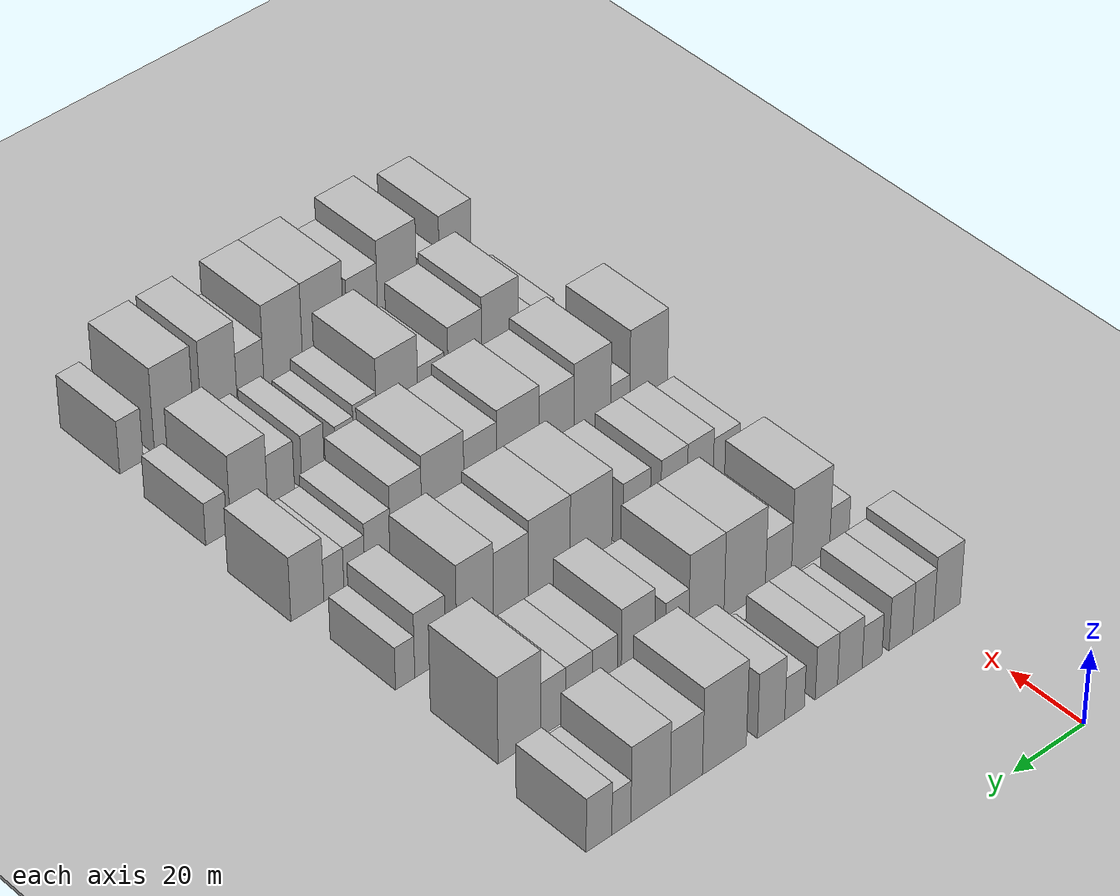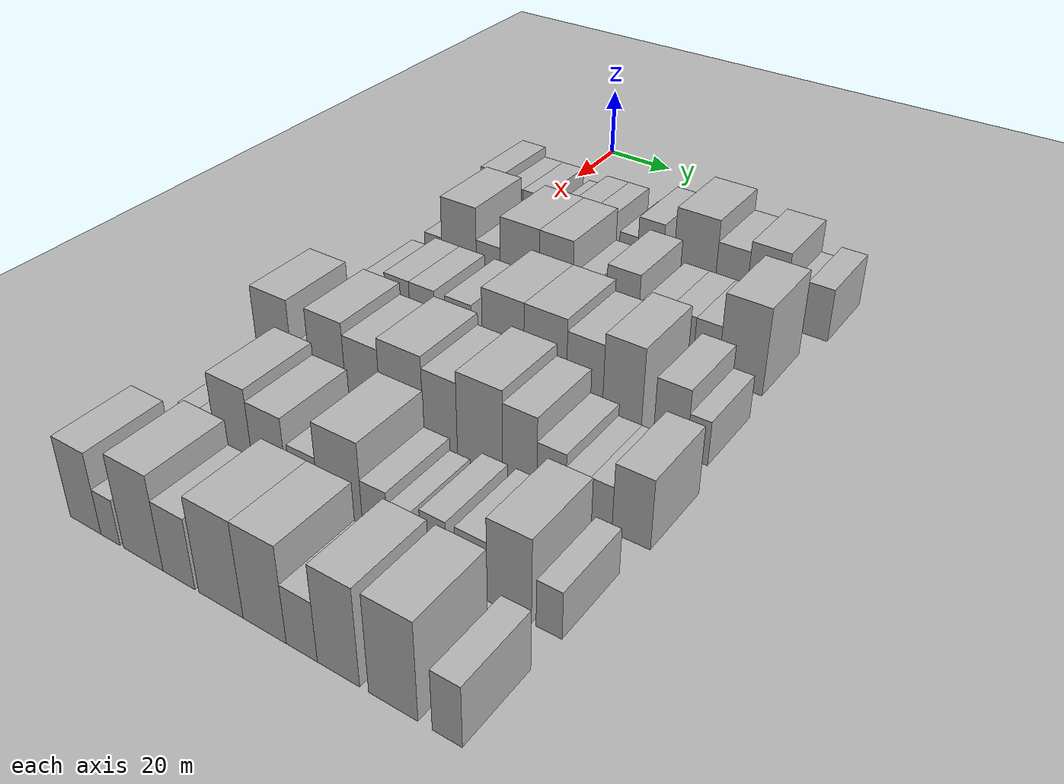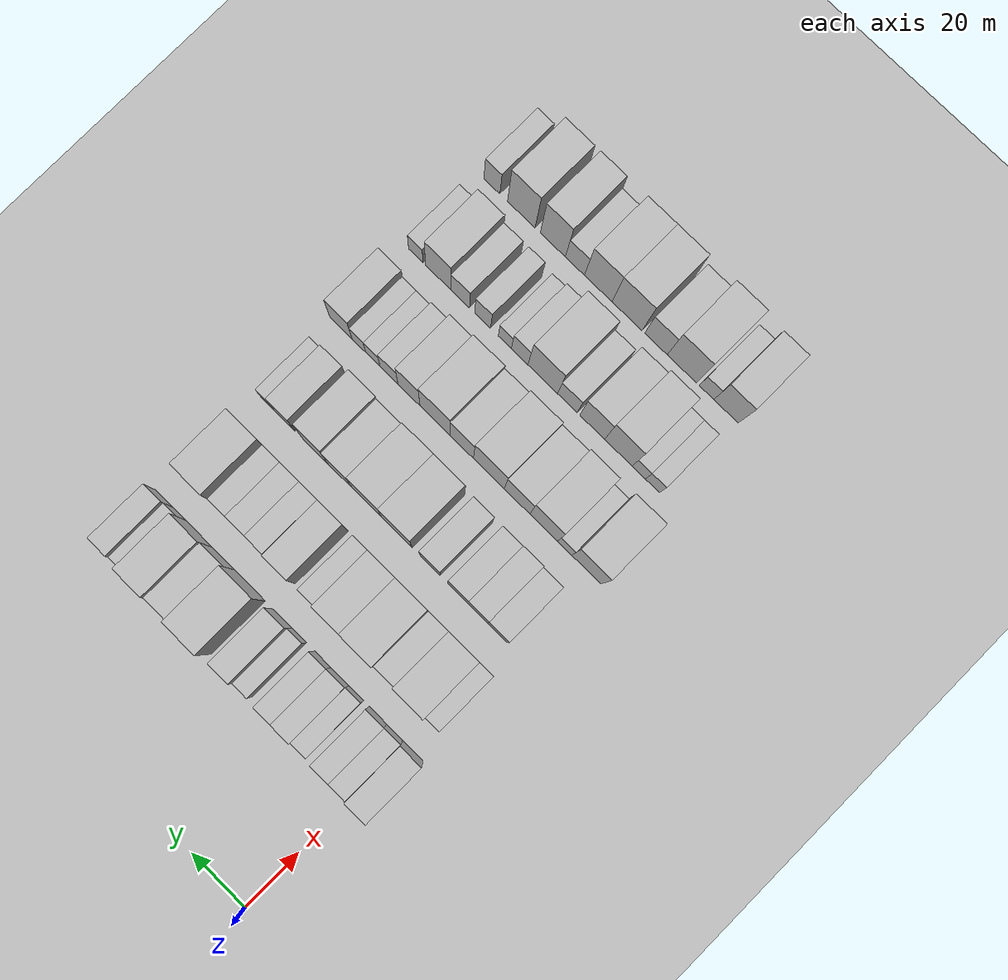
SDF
<sdf version="1.6">
 <world name="default">
  <include><name>ground_plane_1</name><uri>model://HANNAS_ground_plane</uri></include>
  <include>
   <name>ground_plane_2</name>
   <uri>model://HANNAS_ground_plane</uri>
   <pose>100 0 0  0 0 0</pose>
  </include>
  <model name="building_58">
   <static>1</static>
   <pose>50.0000 -2.4534 0 0.000000 0.000000 0.000000</pose>
   <link name="link">
    <pose>0 0 9.00 0 0 0</pose>
    <collision name="collision"><geometry><box><size>20.0000 7.6511 18.0000</size></box></geometry></collision>
    <visual name="visual">
     <cast_shadows>0</cast_shadows>
     <geometry><box><size>20.0000 7.6511 18.0000</size></box></geometry>
     <material>
      <script>
       <uri>model://HANNAS_wall/materials/scripts</uri>
       <uri>model://HANNAS_wall/materials/textures</uri>
       <name>vrc/HANNAS_wall</name>
      </script>
     </material>
    </visual>
   </link>
  </model>
  <model name="building_59">
   <static>1</static>
   <pose>50.0000 4.3896 0 0.000000 0.000000 0.000000</pose>
   <link name="link">
    <pose>0 0 7.50 0 0 0</pose>
    <collision name="collision"><geometry><box><size>20.0000 6.0348 15.0000</size></box></geometry></collision>
    <visual name="visual">
     <cast_shadows>0</cast_shadows>
     <geometry><box><size>20.0000 6.0348 15.0000</size></box></geometry>
     <material>
      <script>
       <uri>model://HANNAS_wall/materials/scripts</uri>
       <uri>model://HANNAS_wall/materials/textures</uri>
       <name>vrc/HANNAS_wall</name>
      </script>
     </material>
    </visual>
   </link>
  </model>
  <model name="building_60">
   <static>1</static>
   <pose>50.0000 10.7642 0 0.000000 0.000000 0.000000</pose>
   <link name="link">
    <pose>0 0 7.50 0 0 0</pose>
    <collision name="collision"><geometry><box><size>20.0000 6.7144 15.0000</size></box></geometry></collision>
    <visual name="visual">
     <cast_shadows>0</cast_shadows>
     <geometry><box><size>20.0000 6.7144 15.0000</size></box></geometry>
     <material>
      <script>
       <uri>model://HANNAS_wall/materials/scripts</uri>
       <uri>model://HANNAS_wall/materials/textures</uri>
       <name>vrc/HANNAS_wall</name>
      </script>
     </material>
    </visual>
   </link>
  </model>
  <model name="building_61">
   <static>1</static>
   <pose>50.0000 18.9298 0 0.000000 0.000000 0.000000</pose>
   <link name="link">
    <pose>0 0 6.00 0 0 0</pose>
    <collision name="collision"><geometry><box><size>20.0000 5.6169 12.0000</size></box></geometry></collision>
    <visual name="visual">
     <cast_shadows>0</cast_shadows>
     <geometry><box><size>20.0000 5.6169 12.0000</size></box></geometry>
     <material>
      <script>
       <uri>model://HANNAS_wall/materials/scripts</uri>
       <uri>model://HANNAS_wall/materials/textures</uri>
       <name>vrc/HANNAS_wall</name>
      </script>
     </material>
    </visual>
   </link>
  </model>
  <model name="building_62">
   <static>1</static>
   <pose>50.0000 25.1794 0 0.000000 0.000000 0.000000</pose>
   <link name="link">
    <pose>0 0 7.50 0 0 0</pose>
    <collision name="collision"><geometry><box><size>20.0000 6.8823 15.0000</size></box></geometry></collision>
    <visual name="visual">
     <cast_shadows>0</cast_shadows>
     <geometry><box><size>20.0000 6.8823 15.0000</size></box></geometry>
     <material>
      <script>
       <uri>model://HANNAS_wall/materials/scripts</uri>
       <uri>model://HANNAS_wall/materials/textures</uri>
       <name>vrc/HANNAS_wall</name>
      </script>
     </material>
    </visual>
   </link>
  </model>
  <model name="building_63">
   <static>1</static>
   <pose>50.0000 31.7321 0 0.000000 0.000000 0.000000</pose>
   <link name="link">
    <pose>0 0 7.50 0 0 0</pose>
    <collision name="collision"><geometry><box><size>20.0000 6.2230 15.0000</size></box></geometry></collision>
    <visual name="visual">
     <cast_shadows>0</cast_shadows>
     <geometry><box><size>20.0000 6.2230 15.0000</size></box></geometry>
     <material>
      <script>
       <uri>model://HANNAS_wall/materials/scripts</uri>
       <uri>model://HANNAS_wall/materials/textures</uri>
       <name>vrc/HANNAS_wall</name>
      </script>
     </material>
    </visual>
   </link>
  </model>
  <model name="building_64">
   <static>1</static>
   <pose>50.0000 40.5604 0 0.000000 0.000000 0.000000</pose>
   <link name="link">
    <pose>0 0 6.00 0 0 0</pose>
    <collision name="collision"><geometry><box><size>20.0000 5.4337 12.0000</size></box></geometry></collision>
    <visual name="visual">
     <cast_shadows>0</cast_shadows>
     <geometry><box><size>20.0000 5.4337 12.0000</size></box></geometry>
     <material>
      <script>
       <uri>model://HANNAS_wall/materials/scripts</uri>
       <uri>model://HANNAS_wall/materials/textures</uri>
       <name>vrc/HANNAS_wall</name>
      </script>
     </material>
    </visual>
   </link>
  </model>
  <model name="building_65">
   <static>1</static>
   <pose>50.0000 47.0126 0 0.000000 0.000000 0.000000</pose>
   <link name="link">
    <pose>0 0 9.00 0 0 0</pose>
    <collision name="collision"><geometry><box><size>20.0000 7.4707 18.0000</size></box></geometry></collision>
    <visual name="visual">
     <cast_shadows>0</cast_shadows>
     <geometry><box><size>20.0000 7.4707 18.0000</size></box></geometry>
     <material>
      <script>
       <uri>model://HANNAS_wall/materials/scripts</uri>
       <uri>model://HANNAS_wall/materials/textures</uri>
       <name>vrc/HANNAS_wall</name>
      </script>
     </material>
    </visual>
   </link>
  </model>
  <model name="building_66">
   <static>1</static>
   <pose>50.0000 59.6957 0 0.000000 0.000000 0.000000</pose>
   <link name="link">
    <pose>0 0 12.00 0 0 0</pose>
    <collision name="collision"><geometry><box><size>20.0000 11.8955 24.0000</size></box></geometry></collision>
    <visual name="visual">
     <cast_shadows>0</cast_shadows>
     <geometry><box><size>20.0000 11.8955 24.0000</size></box></geometry>
     <material>
      <script>
       <uri>model://HANNAS_wall/materials/scripts</uri>
       <uri>model://HANNAS_wall/materials/textures</uri>
       <name>vrc/HANNAS_wall</name>
      </script>
     </material>
    </visual>
   </link>
  </model>
  <model name="building_67">
   <static>1</static>
   <pose>50.0000 69.9708 0 0.000000 0.000000 0.000000</pose>
   <link name="link">
    <pose>0 0 9.00 0 0 0</pose>
    <collision name="collision"><geometry><box><size>20.0000 8.6546 18.0000</size></box></geometry></collision>
    <visual name="visual">
     <cast_shadows>0</cast_shadows>
     <geometry><box><size>20.0000 8.6546 18.0000</size></box></geometry>
     <material>
      <script>
       <uri>model://HANNAS_wall/materials/scripts</uri>
       <uri>model://HANNAS_wall/materials/textures</uri>
       <name>vrc/HANNAS_wall</name>
      </script>
     </material>
    </visual>
   </link>
  </model>
  <model name="building_68">
   <static>1</static>
   <pose>50.0000 79.4829 0 0.000000 0.000000 0.000000</pose>
   <link name="link">
    <pose>0 0 10.50 0 0 0</pose>
    <collision name="collision"><geometry><box><size>20.0000 10.3696 21.0000</size></box></geometry></collision>
    <visual name="visual">
     <cast_shadows>0</cast_shadows>
     <geometry><box><size>20.0000 10.3696 21.0000</size></box></geometry>
     <material>
      <script>
       <uri>model://HANNAS_wall/materials/scripts</uri>
       <uri>model://HANNAS_wall/materials/textures</uri>
       <name>vrc/HANNAS_wall</name>
      </script>
     </material>
    </visual>
   </link>
  </model>
  <model name="building_69">
   <static>1</static>
   <pose>50.0000 87.1651 0 0.000000 0.000000 0.000000</pose>
   <link name="link">
    <pose>0 0 6.00 0 0 0</pose>
    <collision name="collision"><geometry><box><size>20.0000 4.9949 12.0000</size></box></geometry></collision>
    <visual name="visual">
     <cast_shadows>0</cast_shadows>
     <geometry><box><size>20.0000 4.9949 12.0000</size></box></geometry>
     <material>
      <script>
       <uri>model://HANNAS_wall/materials/scripts</uri>
       <uri>model://HANNAS_wall/materials/textures</uri>
       <name>vrc/HANNAS_wall</name>
      </script>
     </material>
    </visual>
   </link>
  </model>
  <model name="building_70">
   <static>1</static>
   <pose>50.0000 93.0184 0 0.000000 0.000000 0.000000</pose>
   <link name="link">
    <pose>0 0 7.50 0 0 0</pose>
    <collision name="collision"><geometry><box><size>20.0000 6.7116 15.0000</size></box></geometry></collision>
    <visual name="visual">
     <cast_shadows>0</cast_shadows>
     <geometry><box><size>20.0000 6.7116 15.0000</size></box></geometry>
     <material>
      <script>
       <uri>model://HANNAS_wall/materials/scripts</uri>
       <uri>model://HANNAS_wall/materials/textures</uri>
       <name>vrc/HANNAS_wall</name>
      </script>
     </material>
    </visual>
   </link>
  </model>
  <model name="building_177">
   <static>1</static>
   <pose>79.0000 -0.6655 0 0.000000 0.000000 0.000000</pose>
   <link name="link">
    <pose>0 0 6.00 0 0 0</pose>
    <collision name="collision"><geometry><box><size>20.0000 5.5557 12.0000</size></box></geometry></collision>
    <visual name="visual">
     <cast_shadows>0</cast_shadows>
     <geometry><box><size>20.0000 5.5557 12.0000</size></box></geometry>
     <material>
      <script>
       <uri>model://HANNAS_wall/materials/scripts</uri>
       <uri>model://HANNAS_wall/materials/textures</uri>
       <name>vrc/HANNAS_wall</name>
      </script>
     </material>
    </visual>
   </link>
  </model>
  <model name="building_178">
   <static>1</static>
   <pose>79.0000 7.5783 0 0.000000 0.000000 0.000000</pose>
   <link name="link">
    <pose>0 0 12.00 0 0 0</pose>
    <collision name="collision"><geometry><box><size>20.0000 10.9320 24.0000</size></box></geometry></collision>
    <visual name="visual">
     <cast_shadows>0</cast_shadows>
     <geometry><box><size>20.0000 10.9320 24.0000</size></box></geometry>
     <material>
      <script>
       <uri>model://HANNAS_wall/materials/scripts</uri>
       <uri>model://HANNAS_wall/materials/textures</uri>
       <name>vrc/HANNAS_wall</name>
      </script>
     </material>
    </visual>
   </link>
  </model>
  <model name="building_179">
   <static>1</static>
   <pose>79.0000 16.7411 0 0.000000 0.000000 0.000000</pose>
   <link name="link">
    <pose>0 0 7.50 0 0 0</pose>
    <collision name="collision"><geometry><box><size>20.0000 7.3936 15.0000</size></box></geometry></collision>
    <visual name="visual">
     <cast_shadows>0</cast_shadows>
     <geometry><box><size>20.0000 7.3936 15.0000</size></box></geometry>
     <material>
      <script>
       <uri>model://HANNAS_wall/materials/scripts</uri>
       <uri>model://HANNAS_wall/materials/textures</uri>
       <name>vrc/HANNAS_wall</name>
      </script>
     </material>
    </visual>
   </link>
  </model>
  <model name="building_180">
   <static>1</static>
   <pose>79.0000 26.2429 0 0.000000 0.000000 0.000000</pose>
   <link name="link">
    <pose>0 0 12.00 0 0 0</pose>
    <collision name="collision"><geometry><box><size>20.0000 11.6099 24.0000</size></box></geometry></collision>
    <visual name="visual">
     <cast_shadows>0</cast_shadows>
     <geometry><box><size>20.0000 11.6099 24.0000</size></box></geometry>
     <material>
      <script>
       <uri>model://HANNAS_wall/materials/scripts</uri>
       <uri>model://HANNAS_wall/materials/textures</uri>
       <name>vrc/HANNAS_wall</name>
      </script>
     </material>
    </visual>
   </link>
  </model>
  <model name="building_181">
   <static>1</static>
   <pose>79.0000 36.9601 0 0.000000 0.000000 0.000000</pose>
   <link name="link">
    <pose>0 0 12.00 0 0 0</pose>
    <collision name="collision"><geometry><box><size>20.0000 9.8245 24.0000</size></box></geometry></collision>
    <visual name="visual">
     <cast_shadows>0</cast_shadows>
     <geometry><box><size>20.0000 9.8245 24.0000</size></box></geometry>
     <material>
      <script>
       <uri>model://HANNAS_wall/materials/scripts</uri>
       <uri>model://HANNAS_wall/materials/textures</uri>
       <name>vrc/HANNAS_wall</name>
      </script>
     </material>
    </visual>
   </link>
  </model>
  <model name="building_182">
   <static>1</static>
   <pose>79.0000 45.0805 0 0.000000 0.000000 0.000000</pose>
   <link name="link">
    <pose>0 0 7.50 0 0 0</pose>
    <collision name="collision"><geometry><box><size>20.0000 6.4164 15.0000</size></box></geometry></collision>
    <visual name="visual">
     <cast_shadows>0</cast_shadows>
     <geometry><box><size>20.0000 6.4164 15.0000</size></box></geometry>
     <material>
      <script>
       <uri>model://HANNAS_wall/materials/scripts</uri>
       <uri>model://HANNAS_wall/materials/textures</uri>
       <name>vrc/HANNAS_wall</name>
      </script>
     </material>
    </visual>
   </link>
  </model>
  <model name="building_183">
   <static>1</static>
   <pose>79.0000 55.7771 0 0.000000 0.000000 0.000000</pose>
   <link name="link">
    <pose>0 0 10.50 0 0 0</pose>
    <collision name="collision"><geometry><box><size>20.0000 8.9768 21.0000</size></box></geometry></collision>
    <visual name="visual">
     <cast_shadows>0</cast_shadows>
     <geometry><box><size>20.0000 8.9768 21.0000</size></box></geometry>
     <material>
      <script>
       <uri>model://HANNAS_wall/materials/scripts</uri>
       <uri>model://HANNAS_wall/materials/textures</uri>
       <name>vrc/HANNAS_wall</name>
      </script>
     </material>
    </visual>
   </link>
  </model>
  <model name="building_184">
   <static>1</static>
   <pose>79.0000 64.6542 0 0.000000 0.000000 0.000000</pose>
   <link name="link">
    <pose>0 0 7.50 0 0 0</pose>
    <collision name="collision"><geometry><box><size>20.0000 6.7773 15.0000</size></box></geometry></collision>
    <visual name="visual">
     <cast_shadows>0</cast_shadows>
     <geometry><box><size>20.0000 6.7773 15.0000</size></box></geometry>
     <material>
      <script>
       <uri>model://HANNAS_wall/materials/scripts</uri>
       <uri>model://HANNAS_wall/materials/textures</uri>
       <name>vrc/HANNAS_wall</name>
      </script>
     </material>
    </visual>
   </link>
  </model>
  <model name="building_185">
   <static>1</static>
   <pose>79.0000 71.6038 0 0.000000 0.000000 0.000000</pose>
   <link name="link">
    <pose>0 0 7.50 0 0 0</pose>
    <collision name="collision"><geometry><box><size>20.0000 7.1219 15.0000</size></box></geometry></collision>
    <visual name="visual">
     <cast_shadows>0</cast_shadows>
     <geometry><box><size>20.0000 7.1219 15.0000</size></box></geometry>
     <material>
      <script>
       <uri>model://HANNAS_wall/materials/scripts</uri>
       <uri>model://HANNAS_wall/materials/textures</uri>
       <name>vrc/HANNAS_wall</name>
      </script>
     </material>
    </visual>
   </link>
  </model>
  <model name="building_186">
   <static>1</static>
   <pose>79.0000 78.4452 0 0.000000 0.000000 0.000000</pose>
   <link name="link">
    <pose>0 0 7.50 0 0 0</pose>
    <collision name="collision"><geometry><box><size>20.0000 6.5608 15.0000</size></box></geometry></collision>
    <visual name="visual">
     <cast_shadows>0</cast_shadows>
     <geometry><box><size>20.0000 6.5608 15.0000</size></box></geometry>
     <material>
      <script>
       <uri>model://HANNAS_wall/materials/scripts</uri>
       <uri>model://HANNAS_wall/materials/textures</uri>
       <name>vrc/HANNAS_wall</name>
      </script>
     </material>
    </visual>
   </link>
  </model>
  <model name="building_187">
   <static>1</static>
   <pose>79.0000 87.3810 0 0.000000 0.000000 0.000000</pose>
   <link name="link">
    <pose>0 0 12.00 0 0 0</pose>
    <collision name="collision"><geometry><box><size>20.0000 11.3110 24.0000</size></box></geometry></collision>
    <visual name="visual">
     <cast_shadows>0</cast_shadows>
     <geometry><box><size>20.0000 11.3110 24.0000</size></box></geometry>
     <material>
      <script>
       <uri>model://HANNAS_wall/materials/scripts</uri>
       <uri>model://HANNAS_wall/materials/textures</uri>
       <name>vrc/HANNAS_wall</name>
      </script>
     </material>
    </visual>
   </link>
  </model>
  <model name="building_292">
   <static>1</static>
   <pose>108.0000 3.6352 0 0.000000 0.000000 0.000000</pose>
   <link name="link">
    <pose>0 0 7.50 0 0 0</pose>
    <collision name="collision"><geometry><box><size>20.0000 7.4765 15.0000</size></box></geometry></collision>
    <visual name="visual">
     <cast_shadows>0</cast_shadows>
     <geometry><box><size>20.0000 7.4765 15.0000</size></box></geometry>
     <material>
      <script>
       <uri>model://HANNAS_wall/materials/scripts</uri>
       <uri>model://HANNAS_wall/materials/textures</uri>
       <name>vrc/HANNAS_wall</name>
      </script>
     </material>
    </visual>
   </link>
  </model>
  <model name="building_293">
   <static>1</static>
   <pose>108.0000 11.0753 0 0.000000 0.000000 0.000000</pose>
   <link name="link">
    <pose>0 0 9.00 0 0 0</pose>
    <collision name="collision"><geometry><box><size>20.0000 7.4038 18.0000</size></box></geometry></collision>
    <visual name="visual">
     <cast_shadows>0</cast_shadows>
     <geometry><box><size>20.0000 7.4038 18.0000</size></box></geometry>
     <material>
      <script>
       <uri>model://HANNAS_wall/materials/scripts</uri>
       <uri>model://HANNAS_wall/materials/textures</uri>
       <name>vrc/HANNAS_wall</name>
      </script>
     </material>
    </visual>
   </link>
  </model>
  <model name="building_294">
   <static>1</static>
   <pose>108.0000 18.5051 0 0.000000 0.000000 0.000000</pose>
   <link name="link">
    <pose>0 0 9.00 0 0 0</pose>
    <collision name="collision"><geometry><box><size>20.0000 7.4556 18.0000</size></box></geometry></collision>
    <visual name="visual">
     <cast_shadows>0</cast_shadows>
     <geometry><box><size>20.0000 7.4556 18.0000</size></box></geometry>
     <material>
      <script>
       <uri>model://HANNAS_wall/materials/scripts</uri>
       <uri>model://HANNAS_wall/materials/textures</uri>
       <name>vrc/HANNAS_wall</name>
      </script>
     </material>
    </visual>
   </link>
  </model>
  <model name="building_295">
   <static>1</static>
   <pose>108.0000 29.0252 0 0.000000 0.000000 0.000000</pose>
   <link name="link">
    <pose>0 0 9.00 0 0 0</pose>
    <collision name="collision"><geometry><box><size>20.0000 7.5846 18.0000</size></box></geometry></collision>
    <visual name="visual">
     <cast_shadows>0</cast_shadows>
     <geometry><box><size>20.0000 7.5846 18.0000</size></box></geometry>
     <material>
      <script>
       <uri>model://HANNAS_wall/materials/scripts</uri>
       <uri>model://HANNAS_wall/materials/textures</uri>
       <name>vrc/HANNAS_wall</name>
      </script>
     </material>
    </visual>
   </link>
  </model>
  <model name="building_296">
   <static>1</static>
   <pose>108.0000 41.6018 0 0.000000 0.000000 0.000000</pose>
   <link name="link">
    <pose>0 0 12.00 0 0 0</pose>
    <collision name="collision"><geometry><box><size>20.0000 11.5686 24.0000</size></box></geometry></collision>
    <visual name="visual">
     <cast_shadows>0</cast_shadows>
     <geometry><box><size>20.0000 11.5686 24.0000</size></box></geometry>
     <material>
      <script>
       <uri>model://HANNAS_wall/materials/scripts</uri>
       <uri>model://HANNAS_wall/materials/textures</uri>
       <name>vrc/HANNAS_wall</name>
      </script>
     </material>
    </visual>
   </link>
  </model>
  <model name="building_297">
   <static>1</static>
   <pose>108.0000 53.0740 0 0.000000 0.000000 0.000000</pose>
   <link name="link">
    <pose>0 0 12.00 0 0 0</pose>
    <collision name="collision"><geometry><box><size>20.0000 11.3758 24.0000</size></box></geometry></collision>
    <visual name="visual">
     <cast_shadows>0</cast_shadows>
     <geometry><box><size>20.0000 11.3758 24.0000</size></box></geometry>
     <material>
      <script>
       <uri>model://HANNAS_wall/materials/scripts</uri>
       <uri>model://HANNAS_wall/materials/textures</uri>
       <name>vrc/HANNAS_wall</name>
      </script>
     </material>
    </visual>
   </link>
  </model>
  <model name="building_298">
   <static>1</static>
   <pose>108.0000 63.4966 0 0.000000 0.000000 0.000000</pose>
   <link name="link">
    <pose>0 0 10.50 0 0 0</pose>
    <collision name="collision"><geometry><box><size>20.0000 9.4693 21.0000</size></box></geometry></collision>
    <visual name="visual">
     <cast_shadows>0</cast_shadows>
     <geometry><box><size>20.0000 9.4693 21.0000</size></box></geometry>
     <material>
      <script>
       <uri>model://HANNAS_wall/materials/scripts</uri>
       <uri>model://HANNAS_wall/materials/textures</uri>
       <name>vrc/HANNAS_wall</name>
      </script>
     </material>
    </visual>
   </link>
  </model>
  <model name="building_299">
   <static>1</static>
   <pose>108.0000 73.1634 0 0.000000 0.000000 0.000000</pose>
   <link name="link">
    <pose>0 0 12.00 0 0 0</pose>
    <collision name="collision"><geometry><box><size>20.0000 9.8643 24.0000</size></box></geometry></collision>
    <visual name="visual">
     <cast_shadows>0</cast_shadows>
     <geometry><box><size>20.0000 9.8643 24.0000</size></box></geometry>
     <material>
      <script>
       <uri>model://HANNAS_wall/materials/scripts</uri>
       <uri>model://HANNAS_wall/materials/textures</uri>
       <name>vrc/HANNAS_wall</name>
      </script>
     </material>
    </visual>
   </link>
  </model>
  <model name="building_300">
   <static>1</static>
   <pose>108.0000 85.1756 0 0.000000 0.000000 0.000000</pose>
   <link name="link">
    <pose>0 0 9.00 0 0 0</pose>
    <collision name="collision"><geometry><box><size>20.0000 8.1601 18.0000</size></box></geometry></collision>
    <visual name="visual">
     <cast_shadows>0</cast_shadows>
     <geometry><box><size>20.0000 8.1601 18.0000</size></box></geometry>
     <material>
      <script>
       <uri>model://HANNAS_wall/materials/scripts</uri>
       <uri>model://HANNAS_wall/materials/textures</uri>
       <name>vrc/HANNAS_wall</name>
      </script>
     </material>
    </visual>
   </link>
  </model>
  <model name="building_301">
   <static>1</static>
   <pose>108.0000 91.7868 0 0.000000 0.000000 0.000000</pose>
   <link name="link">
    <pose>0 0 6.00 0 0 0</pose>
    <collision name="collision"><geometry><box><size>20.0000 5.0624 12.0000</size></box></geometry></collision>
    <visual name="visual">
     <cast_shadows>0</cast_shadows>
     <geometry><box><size>20.0000 5.0624 12.0000</size></box></geometry>
     <material>
      <script>
       <uri>model://HANNAS_wall/materials/scripts</uri>
       <uri>model://HANNAS_wall/materials/textures</uri>
       <name>vrc/HANNAS_wall</name>
      </script>
     </material>
    </visual>
   </link>
  </model>
  <model name="building_396">
   <static>1</static>
   <pose>137.0000 -1.5839 0 0.000000 0.000000 0.000000</pose>
   <link name="link">
    <pose>0 0 12.00 0 0 0</pose>
    <collision name="collision"><geometry><box><size>20.0000 10.9339 24.0000</size></box></geometry></collision>
    <visual name="visual">
     <cast_shadows>0</cast_shadows>
     <geometry><box><size>20.0000 10.9339 24.0000</size></box></geometry>
     <material>
      <script>
       <uri>model://HANNAS_wall/materials/scripts</uri>
       <uri>model://HANNAS_wall/materials/textures</uri>
       <name>vrc/HANNAS_wall</name>
      </script>
     </material>
    </visual>
   </link>
  </model>
  <model name="building_397">
   <static>1</static>
   <pose>137.0000 6.5818 0 0.000000 0.000000 0.000000</pose>
   <link name="link">
    <pose>0 0 6.00 0 0 0</pose>
    <collision name="collision"><geometry><box><size>20.0000 5.3975 12.0000</size></box></geometry></collision>
    <visual name="visual">
     <cast_shadows>0</cast_shadows>
     <geometry><box><size>20.0000 5.3975 12.0000</size></box></geometry>
     <material>
      <script>
       <uri>model://HANNAS_wall/materials/scripts</uri>
       <uri>model://HANNAS_wall/materials/textures</uri>
       <name>vrc/HANNAS_wall</name>
      </script>
     </material>
    </visual>
   </link>
  </model>
  <model name="building_398">
   <static>1</static>
   <pose>137.0000 14.5243 0 0.000000 0.000000 0.000000</pose>
   <link name="link">
    <pose>0 0 12.00 0 0 0</pose>
    <collision name="collision"><geometry><box><size>20.0000 10.4874 24.0000</size></box></geometry></collision>
    <visual name="visual">
     <cast_shadows>0</cast_shadows>
     <geometry><box><size>20.0000 10.4874 24.0000</size></box></geometry>
     <material>
      <script>
       <uri>model://HANNAS_wall/materials/scripts</uri>
       <uri>model://HANNAS_wall/materials/textures</uri>
       <name>vrc/HANNAS_wall</name>
      </script>
     </material>
    </visual>
   </link>
  </model>
  <model name="building_399">
   <static>1</static>
   <pose>137.0000 24.6572 0 0.000000 0.000000 0.000000</pose>
   <link name="link">
    <pose>0 0 10.50 0 0 0</pose>
    <collision name="collision"><geometry><box><size>20.0000 9.7783 21.0000</size></box></geometry></collision>
    <visual name="visual">
     <cast_shadows>0</cast_shadows>
     <geometry><box><size>20.0000 9.7783 21.0000</size></box></geometry>
     <material>
      <script>
       <uri>model://HANNAS_wall/materials/scripts</uri>
       <uri>model://HANNAS_wall/materials/textures</uri>
       <name>vrc/HANNAS_wall</name>
      </script>
     </material>
    </visual>
   </link>
  </model>
  <model name="building_400">
   <static>1</static>
   <pose>137.0000 35.4479 0 0.000000 0.000000 0.000000</pose>
   <link name="link">
    <pose>0 0 12.00 0 0 0</pose>
    <collision name="collision"><geometry><box><size>20.0000 11.8031 24.0000</size></box></geometry></collision>
    <visual name="visual">
     <cast_shadows>0</cast_shadows>
     <geometry><box><size>20.0000 11.8031 24.0000</size></box></geometry>
     <material>
      <script>
       <uri>model://HANNAS_wall/materials/scripts</uri>
       <uri>model://HANNAS_wall/materials/textures</uri>
       <name>vrc/HANNAS_wall</name>
      </script>
     </material>
    </visual>
   </link>
  </model>
  <model name="building_401">
   <static>1</static>
   <pose>137.0000 45.8466 0 0.000000 0.000000 0.000000</pose>
   <link name="link">
    <pose>0 0 10.50 0 0 0</pose>
    <collision name="collision"><geometry><box><size>20.0000 8.9944 21.0000</size></box></geometry></collision>
    <visual name="visual">
     <cast_shadows>0</cast_shadows>
     <geometry><box><size>20.0000 8.9944 21.0000</size></box></geometry>
     <material>
      <script>
       <uri>model://HANNAS_wall/materials/scripts</uri>
       <uri>model://HANNAS_wall/materials/textures</uri>
       <name>vrc/HANNAS_wall</name>
      </script>
     </material>
    </visual>
   </link>
  </model>
  <model name="building_402">
   <static>1</static>
   <pose>137.0000 56.1126 0 0.000000 0.000000 0.000000</pose>
   <link name="link">
    <pose>0 0 12.00 0 0 0</pose>
    <collision name="collision"><geometry><box><size>20.0000 11.5376 24.0000</size></box></geometry></collision>
    <visual name="visual">
     <cast_shadows>0</cast_shadows>
     <geometry><box><size>20.0000 11.5376 24.0000</size></box></geometry>
     <material>
      <script>
       <uri>model://HANNAS_wall/materials/scripts</uri>
       <uri>model://HANNAS_wall/materials/textures</uri>
       <name>vrc/HANNAS_wall</name>
      </script>
     </material>
    </visual>
   </link>
  </model>
  <model name="building_403">
   <static>1</static>
   <pose>137.0000 66.1557 0 0.000000 0.000000 0.000000</pose>
   <link name="link">
    <pose>0 0 10.50 0 0 0</pose>
    <collision name="collision"><geometry><box><size>20.0000 8.5486 21.0000</size></box></geometry></collision>
    <visual name="visual">
     <cast_shadows>0</cast_shadows>
     <geometry><box><size>20.0000 8.5486 21.0000</size></box></geometry>
     <material>
      <script>
       <uri>model://HANNAS_wall/materials/scripts</uri>
       <uri>model://HANNAS_wall/materials/textures</uri>
       <name>vrc/HANNAS_wall</name>
      </script>
     </material>
    </visual>
   </link>
  </model>
  <model name="building_404">
   <static>1</static>
   <pose>137.0000 73.8953 0 0.000000 0.000000 0.000000</pose>
   <link name="link">
    <pose>0 0 7.50 0 0 0</pose>
    <collision name="collision"><geometry><box><size>20.0000 6.9306 15.0000</size></box></geometry></collision>
    <visual name="visual">
     <cast_shadows>0</cast_shadows>
     <geometry><box><size>20.0000 6.9306 15.0000</size></box></geometry>
     <material>
      <script>
       <uri>model://HANNAS_wall/materials/scripts</uri>
       <uri>model://HANNAS_wall/materials/textures</uri>
       <name>vrc/HANNAS_wall</name>
      </script>
     </material>
    </visual>
   </link>
  </model>
  <model name="building_405">
   <static>1</static>
   <pose>137.0000 80.1697 0 0.000000 0.000000 0.000000</pose>
   <link name="link">
    <pose>0 0 6.00 0 0 0</pose>
    <collision name="collision"><geometry><box><size>20.0000 5.6182 12.0000</size></box></geometry></collision>
    <visual name="visual">
     <cast_shadows>0</cast_shadows>
     <geometry><box><size>20.0000 5.6182 12.0000</size></box></geometry>
     <material>
      <script>
       <uri>model://HANNAS_wall/materials/scripts</uri>
       <uri>model://HANNAS_wall/materials/textures</uri>
       <name>vrc/HANNAS_wall</name>
      </script>
     </material>
    </visual>
   </link>
  </model>
  <model name="building_406">
   <static>1</static>
   <pose>137.0000 85.6380 0 0.000000 0.000000 0.000000</pose>
   <link name="link">
    <pose>0 0 6.00 0 0 0</pose>
    <collision name="collision"><geometry><box><size>20.0000 5.3184 12.0000</size></box></geometry></collision>
    <visual name="visual">
     <cast_shadows>0</cast_shadows>
     <geometry><box><size>20.0000 5.3184 12.0000</size></box></geometry>
     <material>
      <script>
       <uri>model://HANNAS_wall/materials/scripts</uri>
       <uri>model://HANNAS_wall/materials/textures</uri>
       <name>vrc/HANNAS_wall</name>
      </script>
     </material>
    </visual>
   </link>
  </model>
  <model name="building_407">
   <static>1</static>
   <pose>137.0000 92.6521 0 0.000000 0.000000 0.000000</pose>
   <link name="link">
    <pose>0 0 9.00 0 0 0</pose>
    <collision name="collision"><geometry><box><size>20.0000 8.7099 18.0000</size></box></geometry></collision>
    <visual name="visual">
     <cast_shadows>0</cast_shadows>
     <geometry><box><size>20.0000 8.7099 18.0000</size></box></geometry>
     <material>
      <script>
       <uri>model://HANNAS_wall/materials/scripts</uri>
       <uri>model://HANNAS_wall/materials/textures</uri>
       <name>vrc/HANNAS_wall</name>
      </script>
     </material>
    </visual>
   </link>
  </model>
  <model name="building_510">
   <static>1</static>
   <pose>166.0000 1.5478 0 0.000000 0.000000 0.000000</pose>
   <link name="link">
    <pose>0 0 6.00 0 0 0</pose>
    <collision name="collision"><geometry><box><size>20.0000 5.2989 12.0000</size></box></geometry></collision>
    <visual name="visual">
     <cast_shadows>0</cast_shadows>
     <geometry><box><size>20.0000 5.2989 12.0000</size></box></geometry>
     <material>
      <script>
       <uri>model://HANNAS_wall/materials/scripts</uri>
       <uri>model://HANNAS_wall/materials/textures</uri>
       <name>vrc/HANNAS_wall</name>
      </script>
     </material>
    </visual>
   </link>
  </model>
  <model name="building_511">
   <static>1</static>
   <pose>166.0000 6.6892 0 0.000000 0.000000 0.000000</pose>
   <link name="link">
    <pose>0 0 6.00 0 0 0</pose>
    <collision name="collision"><geometry><box><size>20.0000 4.9838 12.0000</size></box></geometry></collision>
    <visual name="visual">
     <cast_shadows>0</cast_shadows>
     <geometry><box><size>20.0000 4.9838 12.0000</size></box></geometry>
     <material>
      <script>
       <uri>model://HANNAS_wall/materials/scripts</uri>
       <uri>model://HANNAS_wall/materials/textures</uri>
       <name>vrc/HANNAS_wall</name>
      </script>
     </material>
    </visual>
   </link>
  </model>
  <model name="building_512">
   <static>1</static>
   <pose>166.0000 14.4138 0 0.000000 0.000000 0.000000</pose>
   <link name="link">
    <pose>0 0 12.00 0 0 0</pose>
    <collision name="collision"><geometry><box><size>20.0000 10.4655 24.0000</size></box></geometry></collision>
    <visual name="visual">
     <cast_shadows>0</cast_shadows>
     <geometry><box><size>20.0000 10.4655 24.0000</size></box></geometry>
     <material>
      <script>
       <uri>model://HANNAS_wall/materials/scripts</uri>
       <uri>model://HANNAS_wall/materials/textures</uri>
       <name>vrc/HANNAS_wall</name>
      </script>
     </material>
    </visual>
   </link>
  </model>
  <model name="building_513">
   <static>1</static>
   <pose>166.0000 24.3834 0 0.000000 0.000000 0.000000</pose>
   <link name="link">
    <pose>0 0 10.50 0 0 0</pose>
    <collision name="collision"><geometry><box><size>20.0000 9.4736 21.0000</size></box></geometry></collision>
    <visual name="visual">
     <cast_shadows>0</cast_shadows>
     <geometry><box><size>20.0000 9.4736 21.0000</size></box></geometry>
     <material>
      <script>
       <uri>model://HANNAS_wall/materials/scripts</uri>
       <uri>model://HANNAS_wall/materials/textures</uri>
       <name>vrc/HANNAS_wall</name>
      </script>
     </material>
    </visual>
   </link>
  </model>
  <model name="building_514">
   <static>1</static>
   <pose>166.0000 33.8544 0 0.000000 0.000000 0.000000</pose>
   <link name="link">
    <pose>0 0 7.50 0 0 0</pose>
    <collision name="collision"><geometry><box><size>20.0000 7.4685 15.0000</size></box></geometry></collision>
    <visual name="visual">
     <cast_shadows>0</cast_shadows>
     <geometry><box><size>20.0000 7.4685 15.0000</size></box></geometry>
     <material>
      <script>
       <uri>model://HANNAS_wall/materials/scripts</uri>
       <uri>model://HANNAS_wall/materials/textures</uri>
       <name>vrc/HANNAS_wall</name>
      </script>
     </material>
    </visual>
   </link>
  </model>
  <model name="building_515">
   <static>1</static>
   <pose>166.0000 43.2991 0 0.000000 0.000000 0.000000</pose>
   <link name="link">
    <pose>0 0 12.00 0 0 0</pose>
    <collision name="collision"><geometry><box><size>20.0000 11.4209 24.0000</size></box></geometry></collision>
    <visual name="visual">
     <cast_shadows>0</cast_shadows>
     <geometry><box><size>20.0000 11.4209 24.0000</size></box></geometry>
     <material>
      <script>
       <uri>model://HANNAS_wall/materials/scripts</uri>
       <uri>model://HANNAS_wall/materials/textures</uri>
       <name>vrc/HANNAS_wall</name>
      </script>
     </material>
    </visual>
   </link>
  </model>
  <model name="building_516">
   <static>1</static>
   <pose>166.0000 52.2154 0 0.000000 0.000000 0.000000</pose>
   <link name="link">
    <pose>0 0 7.50 0 0 0</pose>
    <collision name="collision"><geometry><box><size>20.0000 6.4116 15.0000</size></box></geometry></collision>
    <visual name="visual">
     <cast_shadows>0</cast_shadows>
     <geometry><box><size>20.0000 6.4116 15.0000</size></box></geometry>
     <material>
      <script>
       <uri>model://HANNAS_wall/materials/scripts</uri>
       <uri>model://HANNAS_wall/materials/textures</uri>
       <name>vrc/HANNAS_wall</name>
      </script>
     </material>
    </visual>
   </link>
  </model>
  <model name="building_517">
   <static>1</static>
   <pose>166.0000 57.9398 0 0.000000 0.000000 0.000000</pose>
   <link name="link">
    <pose>0 0 6.00 0 0 0</pose>
    <collision name="collision"><geometry><box><size>20.0000 5.0372 12.0000</size></box></geometry></collision>
    <visual name="visual">
     <cast_shadows>0</cast_shadows>
     <geometry><box><size>20.0000 5.0372 12.0000</size></box></geometry>
     <material>
      <script>
       <uri>model://HANNAS_wall/materials/scripts</uri>
       <uri>model://HANNAS_wall/materials/textures</uri>
       <name>vrc/HANNAS_wall</name>
      </script>
     </material>
    </visual>
   </link>
  </model>
  <model name="building_518">
   <static>1</static>
   <pose>166.0000 66.5325 0 0.000000 0.000000 0.000000</pose>
   <link name="link">
    <pose>0 0 7.50 0 0 0</pose>
    <collision name="collision"><geometry><box><size>20.0000 6.1483 15.0000</size></box></geometry></collision>
    <visual name="visual">
     <cast_shadows>0</cast_shadows>
     <geometry><box><size>20.0000 6.1483 15.0000</size></box></geometry>
     <material>
      <script>
       <uri>model://HANNAS_wall/materials/scripts</uri>
       <uri>model://HANNAS_wall/materials/textures</uri>
       <name>vrc/HANNAS_wall</name>
      </script>
     </material>
    </visual>
   </link>
  </model>
  <model name="building_519">
   <static>1</static>
   <pose>166.0000 75.2097 0 0.000000 0.000000 0.000000</pose>
   <link name="link">
    <pose>0 0 7.50 0 0 0</pose>
    <collision name="collision"><geometry><box><size>20.0000 7.2062 15.0000</size></box></geometry></collision>
    <visual name="visual">
     <cast_shadows>0</cast_shadows>
     <geometry><box><size>20.0000 7.2062 15.0000</size></box></geometry>
     <material>
      <script>
       <uri>model://HANNAS_wall/materials/scripts</uri>
       <uri>model://HANNAS_wall/materials/textures</uri>
       <name>vrc/HANNAS_wall</name>
      </script>
     </material>
    </visual>
   </link>
  </model>
  <model name="building_520">
   <static>1</static>
   <pose>166.0000 83.7863 0 0.000000 0.000000 0.000000</pose>
   <link name="link">
    <pose>0 0 10.50 0 0 0</pose>
    <collision name="collision"><geometry><box><size>20.0000 9.9469 21.0000</size></box></geometry></collision>
    <visual name="visual">
     <cast_shadows>0</cast_shadows>
     <geometry><box><size>20.0000 9.9469 21.0000</size></box></geometry>
     <material>
      <script>
       <uri>model://HANNAS_wall/materials/scripts</uri>
       <uri>model://HANNAS_wall/materials/textures</uri>
       <name>vrc/HANNAS_wall</name>
      </script>
     </material>
    </visual>
   </link>
  </model>
  <model name="building_521">
   <static>1</static>
   <pose>166.0000 92.5744 0 0.000000 0.000000 0.000000</pose>
   <link name="link">
    <pose>0 0 6.00 0 0 0</pose>
    <collision name="collision"><geometry><box><size>20.0000 5.6294 12.0000</size></box></geometry></collision>
    <visual name="visual">
     <cast_shadows>0</cast_shadows>
     <geometry><box><size>20.0000 5.6294 12.0000</size></box></geometry>
     <material>
      <script>
       <uri>model://HANNAS_wall/materials/scripts</uri>
       <uri>model://HANNAS_wall/materials/textures</uri>
       <name>vrc/HANNAS_wall</name>
      </script>
     </material>
    </visual>
   </link>
  </model>
  <model name="building_627">
   <static>1</static>
   <pose>195.0000 1.5267 0 0.000000 0.000000 0.000000</pose>
   <link name="link">
    <pose>0 0 10.50 0 0 0</pose>
    <collision name="collision"><geometry><box><size>20.0000 9.1969 21.0000</size></box></geometry></collision>
    <visual name="visual">
     <cast_shadows>0</cast_shadows>
     <geometry><box><size>20.0000 9.1969 21.0000</size></box></geometry>
     <material>
      <script>
       <uri>model://HANNAS_wall/materials/scripts</uri>
       <uri>model://HANNAS_wall/materials/textures</uri>
       <name>vrc/HANNAS_wall</name>
      </script>
     </material>
    </visual>
   </link>
  </model>
  <model name="building_628">
   <static>1</static>
   <pose>195.0000 8.8916 0 0.000000 0.000000 0.000000</pose>
   <link name="link">
    <pose>0 0 6.00 0 0 0</pose>
    <collision name="collision"><geometry><box><size>20.0000 5.5329 12.0000</size></box></geometry></collision>
    <visual name="visual">
     <cast_shadows>0</cast_shadows>
     <geometry><box><size>20.0000 5.5329 12.0000</size></box></geometry>
     <material>
      <script>
       <uri>model://HANNAS_wall/materials/scripts</uri>
       <uri>model://HANNAS_wall/materials/textures</uri>
       <name>vrc/HANNAS_wall</name>
      </script>
     </material>
    </visual>
   </link>
  </model>
  <model name="building_629">
   <static>1</static>
   <pose>195.0000 18.2248 0 0.000000 0.000000 0.000000</pose>
   <link name="link">
    <pose>0 0 12.00 0 0 0</pose>
    <collision name="collision"><geometry><box><size>20.0000 11.1335 24.0000</size></box></geometry></collision>
    <visual name="visual">
     <cast_shadows>0</cast_shadows>
     <geometry><box><size>20.0000 11.1335 24.0000</size></box></geometry>
     <material>
      <script>
       <uri>model://HANNAS_wall/materials/scripts</uri>
       <uri>model://HANNAS_wall/materials/textures</uri>
       <name>vrc/HANNAS_wall</name>
      </script>
     </material>
    </visual>
   </link>
  </model>
  <model name="building_630">
   <static>1</static>
   <pose>195.0000 28.1002 0 0.000000 0.000000 0.000000</pose>
   <link name="link">
    <pose>0 0 9.00 0 0 0</pose>
    <collision name="collision"><geometry><box><size>20.0000 8.6175 18.0000</size></box></geometry></collision>
    <visual name="visual">
     <cast_shadows>0</cast_shadows>
     <geometry><box><size>20.0000 8.6175 18.0000</size></box></geometry>
     <material>
      <script>
       <uri>model://HANNAS_wall/materials/scripts</uri>
       <uri>model://HANNAS_wall/materials/textures</uri>
       <name>vrc/HANNAS_wall</name>
      </script>
     </material>
    </visual>
   </link>
  </model>
  <model name="building_631">
   <static>1</static>
   <pose>195.0000 39.1579 0 0.000000 0.000000 0.000000</pose>
   <link name="link">
    <pose>0 0 12.00 0 0 0</pose>
    <collision name="collision"><geometry><box><size>20.0000 11.4978 24.0000</size></box></geometry></collision>
    <visual name="visual">
     <cast_shadows>0</cast_shadows>
     <geometry><box><size>20.0000 11.4978 24.0000</size></box></geometry>
     <material>
      <script>
       <uri>model://HANNAS_wall/materials/scripts</uri>
       <uri>model://HANNAS_wall/materials/textures</uri>
       <name>vrc/HANNAS_wall</name>
      </script>
     </material>
    </visual>
   </link>
  </model>
  <model name="building_632">
   <static>1</static>
   <pose>195.0000 50.2505 0 0.000000 0.000000 0.000000</pose>
   <link name="link">
    <pose>0 0 12.00 0 0 0</pose>
    <collision name="collision"><geometry><box><size>20.0000 10.6875 24.0000</size></box></geometry></collision>
    <visual name="visual">
     <cast_shadows>0</cast_shadows>
     <geometry><box><size>20.0000 10.6875 24.0000</size></box></geometry>
     <material>
      <script>
       <uri>model://HANNAS_wall/materials/scripts</uri>
       <uri>model://HANNAS_wall/materials/textures</uri>
       <name>vrc/HANNAS_wall</name>
      </script>
     </material>
    </visual>
   </link>
  </model>
  <model name="building_633">
   <static>1</static>
   <pose>195.0000 59.2914 0 0.000000 0.000000 0.000000</pose>
   <link name="link">
    <pose>0 0 7.50 0 0 0</pose>
    <collision name="collision"><geometry><box><size>20.0000 7.3942 15.0000</size></box></geometry></collision>
    <visual name="visual">
     <cast_shadows>0</cast_shadows>
     <geometry><box><size>20.0000 7.3942 15.0000</size></box></geometry>
     <material>
      <script>
       <uri>model://HANNAS_wall/materials/scripts</uri>
       <uri>model://HANNAS_wall/materials/textures</uri>
       <name>vrc/HANNAS_wall</name>
      </script>
     </material>
    </visual>
   </link>
  </model>
  <model name="building_634">
   <static>1</static>
   <pose>195.0000 67.8493 0 0.000000 0.000000 0.000000</pose>
   <link name="link">
    <pose>0 0 12.00 0 0 0</pose>
    <collision name="collision"><geometry><box><size>20.0000 9.7216 24.0000</size></box></geometry></collision>
    <visual name="visual">
     <cast_shadows>0</cast_shadows>
     <geometry><box><size>20.0000 9.7216 24.0000</size></box></geometry>
     <material>
      <script>
       <uri>model://HANNAS_wall/materials/scripts</uri>
       <uri>model://HANNAS_wall/materials/textures</uri>
       <name>vrc/HANNAS_wall</name>
      </script>
     </material>
    </visual>
   </link>
  </model>
  <model name="building_635">
   <static>1</static>
   <pose>195.0000 80.0839 0 0.000000 0.000000 0.000000</pose>
   <link name="link">
    <pose>0 0 12.00 0 0 0</pose>
    <collision name="collision"><geometry><box><size>20.0000 10.7476 24.0000</size></box></geometry></collision>
    <visual name="visual">
     <cast_shadows>0</cast_shadows>
     <geometry><box><size>20.0000 10.7476 24.0000</size></box></geometry>
     <material>
      <script>
       <uri>model://HANNAS_wall/materials/scripts</uri>
       <uri>model://HANNAS_wall/materials/textures</uri>
       <name>vrc/HANNAS_wall</name>
      </script>
     </material>
    </visual>
   </link>
  </model>
  <model name="building_636">
   <static>1</static>
   <pose>195.0000 91.5858 0 0.000000 0.000000 0.000000</pose>
   <link name="link">
    <pose>0 0 7.50 0 0 0</pose>
    <collision name="collision"><geometry><box><size>20.0000 6.2563 15.0000</size></box></geometry></collision>
    <visual name="visual">
     <cast_shadows>0</cast_shadows>
     <geometry><box><size>20.0000 6.2563 15.0000</size></box></geometry>
     <material>
      <script>
       <uri>model://HANNAS_wall/materials/scripts</uri>
       <uri>model://HANNAS_wall/materials/textures</uri>
       <name>vrc/HANNAS_wall</name>
      </script>
     </material>
    </visual>
   </link>
  </model>
 </world>
</sdf>
